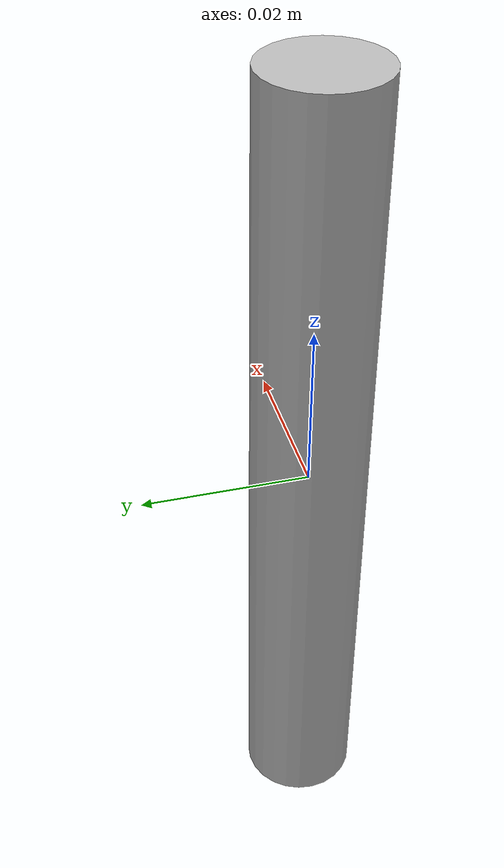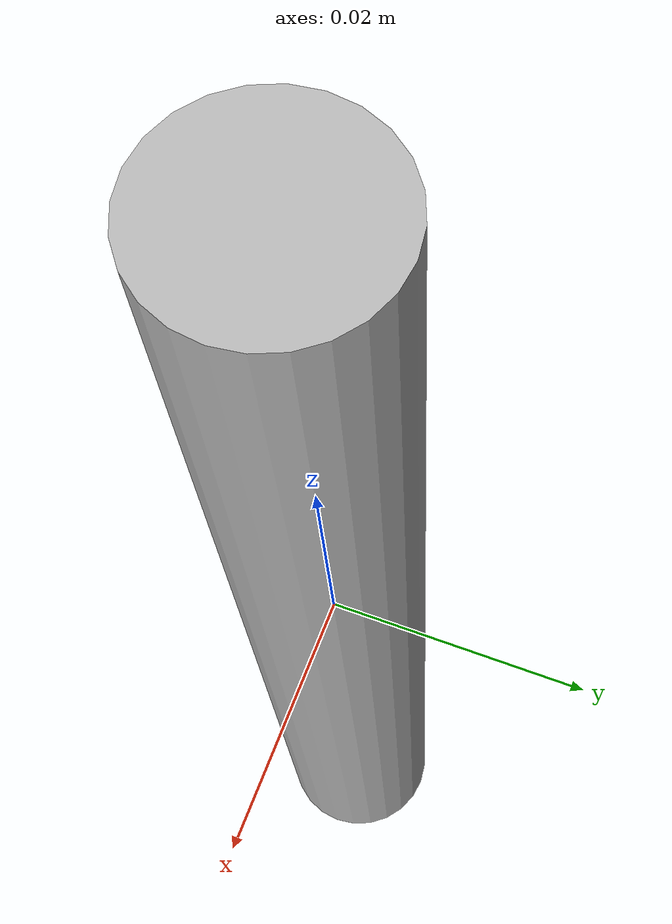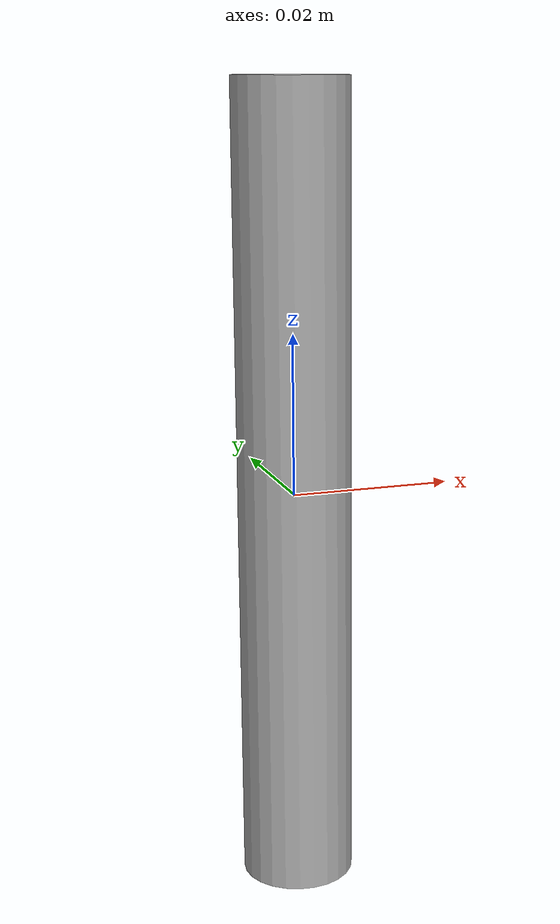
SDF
<?xml version="1.0" ?>
<sdf version="1.5">
  <model name='wifi_reciver'>

    <static>true</static>
    <pose>0 0 0 0 0 0</pose>

      <link name="link">
        <inertial>
          <mass>0.001</mass>
        </inertial>
        <visual name="antenna">
          <pose>0 0 0 0 0 0</pose>
          <geometry>
            <cylinder>
              <radius>.007</radius>
              <length>.1</length>
            </cylinder>
          </geometry>
        </visual>
        <sensor name="wirelessReceiver" type="wireless_receiver">
                <plugin name="receiver_plugin" filename="libwirelessReceiver.so"/>
          <always_on>1</always_on>
          <update_rate>1</update_rate>
          <visualize>true</visualize>
          <transceiver>
            <min_frequency>2400.0</min_frequency>
            <max_frequency>2490.0</max_frequency>
            <power>14.5</power>
            <gain>2.5</gain>
            <sensitivity>-90.0</sensitivity>
          </transceiver>
        </sensor>
      </link>

  </model>
</sdf>
